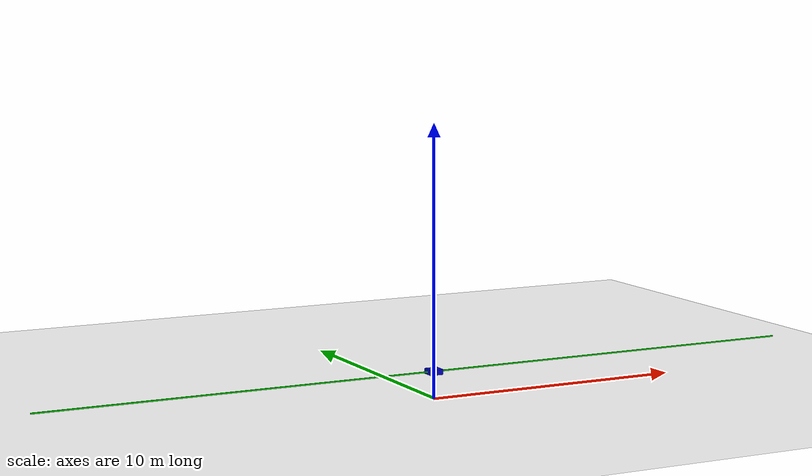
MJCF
<mujoco>
	<option gravity="0 0 -9.81">
		<flag contact="enable" />
	</option>
	<worldbody>
        <light diffuse=".5 .5 .5" pos="0 0 5" dir="0 0 -1" />
		<geom type="plane" size="20 20 0.1" rgba="1 1 1 1" />

        <body name="slideBar" pos="0 0 1" euler="0 0 0">
            <geom type="box" size="15 0.025 0.025" rgba="0 .8 0 1" />
            <inertial pos="0 0 0" mass="100" diaginertia="1.0 1.0 1.0" />
            <body name="cart" pos="0 0 0" euler="0 0 0">
                <joint name="slider_to_cart" type="slide" axis="1 0 0" pos="0 0 0" range="-15 15"/>
                <geom type="box" size="0.25 0.25 0.1" rgba="0 0 .8 1" />
                <inertial pos="0 0 0" mass="1" diaginertia="1.0 1.0 1.0" />
                <site name="imu_in_cart" size="0.01"/>
            </body>
        </body>
	</worldbody>
    <sensor>
        <framequat name="cart_quat" objtype="site" objname="imu_in_cart" />
        <gyro name="cart_gyro" site="imu_in_cart" />
        <accelerometer name="cart_accel" site="imu_in_cart" />
    </sensor>
    <actuator>
        <!-- Position actuator: kv=0.0 for MIT mode compatibility -->
        <position name="act_pos_slider_to_cart" joint="slider_to_cart"
                  kp="100.0" kv="0.0"
                  ctrlrange="-15 15" forcerange="-1000 1000"/>

        <!-- Velocity actuator -->
        <velocity name="act_vel_slider_to_cart" joint="slider_to_cart"
                  kv="10.0"
                  ctrlrange="-30 30" forcerange="-1000 1000"/>

        <!-- Torque actuator -->
        <motor name="act_tau_slider_to_cart" joint="slider_to_cart"
               ctrlrange="-1000 1000" forcerange="-1000 1000"/>
    </actuator>
    <contact>
        <exclude body1="slideBar" body2="cart" />
    </contact>
</mujoco>
